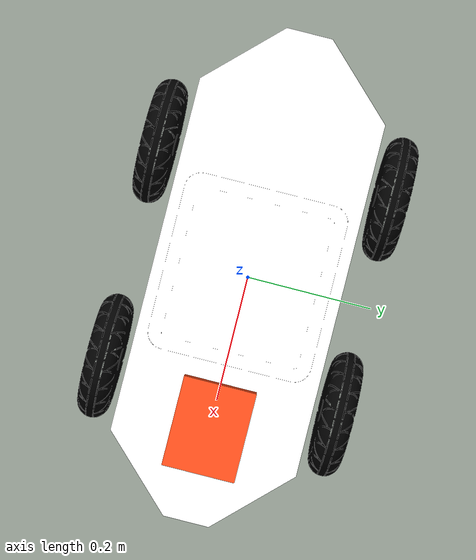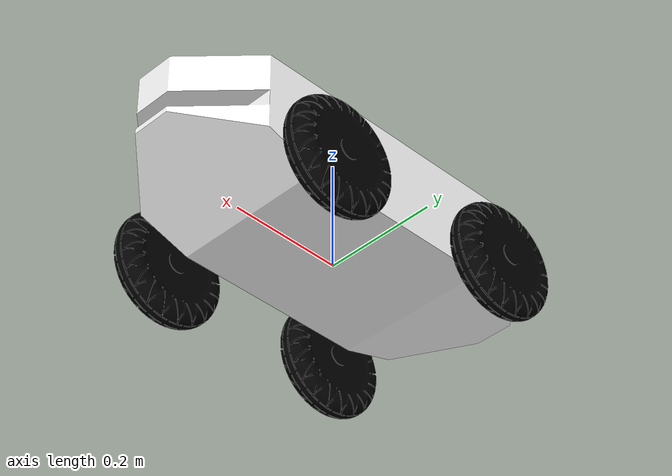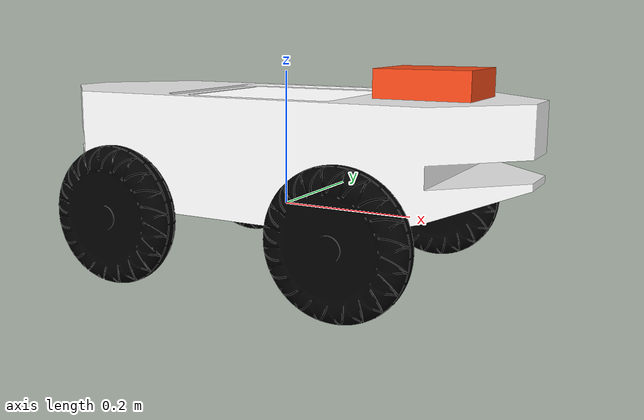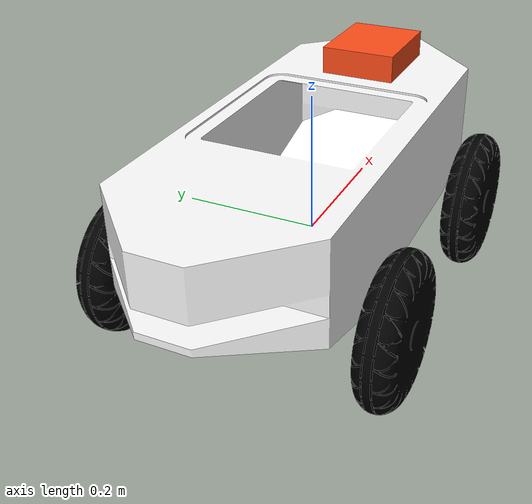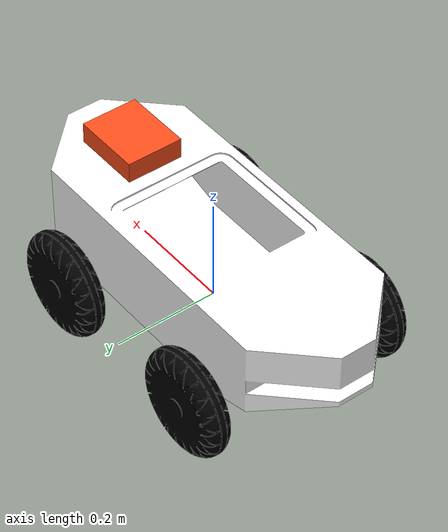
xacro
<?xml version="1.0"?>
<robot xmlns:xacro="http://www.ros.org/wiki/xacro" name="robot">

  <xacro:include filename="$(find description2)/urdf/materials.xacro"/>
  <xacro:include filename="$(find description2)/urdf/robot_core.xacro"/>
  <xacro:include filename="$(find description2)/urdf/wheels_macro.xacro"/>
  <xacro:include filename="$(find description2)/urdf/sensor.xacro"/>

  <xacro:include filename="$(find description2)/urdf/imu.xacro"/>
  <xacro:include filename="$(find description2)/urdf/laser.xacro"/>
  <xacro:include filename="$(find description2)/urdf/gazebo_controller_skid.xacro"/>

</robot>

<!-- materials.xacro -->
<robot xmlns:xacro="http://www.ros.org/wiki/xacro">
  <material name="white">
    <color rgba="1 1 1 1"/>
  </material>

  <material name="orange">
    <color rgba="1 0.3 0.1 1"/>
  </material>

  <material name="blue">
    <color rgba="0.2 0.2 1 1"/>
  </material>

  <material name="black">
    <color rgba="0 0 0 1"/>
  </material>
</robot>

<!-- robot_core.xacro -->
<robot xmlns:xacro="http://www.ros.org/wiki/xacro" >

    <!--BASE LINK-->
    <link name="base_link">
    </link>

    <!--CHASSIS LINK-->
    <joint name="chassis_joint" type="fixed">
        <parent link = "base_link"/>
        <child link = "chassis"/>
        <origin xyz ="0 0 0"/>
    </joint>

    <link name = "chassis">
        <visual>
            <origin xyz= "0 0 0.085"/>
            <geometry>
                <mesh filename= "package://description2/meshes/Chassis.stl" scale="0.001 0.001 0.001"/>
            </geometry>
            <material name ="white"/>
        </visual>
        <collision>
            <origin xyz= "0 0 0.085"/>
            <geometry>
                <box size = "0.69804 0.325 0.17 "/>

            </geometry>
            <material name ="white"/>
        </collision>
        <inertial>
            <mass value="19.928" />
            <origin xyz="0 0 0" />
                    <inertia ixx="0.286" ixy="0.0" ixz="0.0"
                iyy="1.109" iyz="0.0"
                izz="1.227" />
        </inertial>
    </link>

    <gazebo reference = "chassis">
        <material>
            Gazebo/White
        </material>
    </gazebo>

</robot>

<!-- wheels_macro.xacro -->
<xacro>
  <macro name="wheel" params="prefix x y rpy">
    <joint name="${prefix}_joint" type="continuous">
      <parent link="base_link"/>
      <child link="${prefix}_link"/>
      <origin xyz="${x} ${y} 0"/>
      <axis xyz="0 1 0"/>
    </joint>

    <link name="${prefix}_link">
      <visual>
        <geometry>
          <mesh filename="package://description2/meshes/wheels.stl" scale="0.001 0.001 0.001"/>
        </geometry>
        <material name="black"/>
      </visual>
      <collision>
        <origin xyz="0 0 0" rpy="${rpy} 0 0"/>
        <geometry>
          <cylinder radius="0.1" length="0.05"/>
        </geometry>
      </collision>
      <inertial>
        <mass value="1.420"/>
        <origin xyz="0 0 0"/>
        <inertia ixx="0.004" ixy="0.0" ixz="0.0"
                  iyy="0.008" iyz="0.0"
                  izz="0.004" />
      </inertial>
    </link>

    <gazebo reference="${prefix}_link">
      <material>Gazebo/Black</material>
      <mu1 value="0.35"/>
      <mu2 value="0.35"/>
    </gazebo>
  </macro>

  <!-- LEFT WHEELS -->
  <xacro:wheel prefix="left_wheel_front" x="0.175" y="0.1875" rpy="-${pi/2}"/>
  <xacro:wheel prefix="left_wheel_back" x="-0.175" y="0.1875" rpy="-${pi/2}"/>

  <!-- RIGHT WHEELS -->
  <xacro:wheel prefix="right_wheel_front" x="0.175" y="-0.1875" rpy="${pi/2}"/>
  <xacro:wheel prefix="right_wheel_back" x="-0.175" y="-0.1875" rpy="${pi/2}"/>

</xacro>

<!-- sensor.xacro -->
<robot name="sensor" xmlns:xacro="http://www.ros.org/wiki/xacro">
  <xacro:property name="distancex" value="0.135" />
  <xacro:property name="distancey" value="0.11" />
  <xacro:property name="distancez" value= "0.04"/>

 <!-- sensor joint -->
  <joint name="fixed" type="fixed">
    <parent link="base_link"/>
    <child link="sensor"/>
    <origin xyz = "0.23 0 0.17"/>
  </joint>

 <!-- sensor Link -->
  <link name="sensor">
    <visual>
      <origin xyz="0 0 ${distancez/2}" rpy="0 0 0"/>
      <geometry>
        <box size="${distancex} ${distancey} ${distancez}"/>
      </geometry>
      <material name="orange"/>
    </visual>

    <collision>
      <origin xyz="0 0 ${distancez/2}" rpy="0 0 0"/>
      <geometry>
        <box size="${distancex} ${distancey} ${distancez}"/>
      </geometry>
    </collision>

    <inertial>
      <origin xyz="0 0 ${distancez/2}" rpy="0 0 0"/>
      <mass value="1"/>
      <inertia
        ixx="1.0" ixy="0.0" ixz="0.0"
        iyy="1.0" iyz="0.0"
        izz="1.0"/>
    </inertial>
  </link>

  <gazebo reference="sensor">
    <material>Gazebo/Orange</material>
  </gazebo>

</robot>
